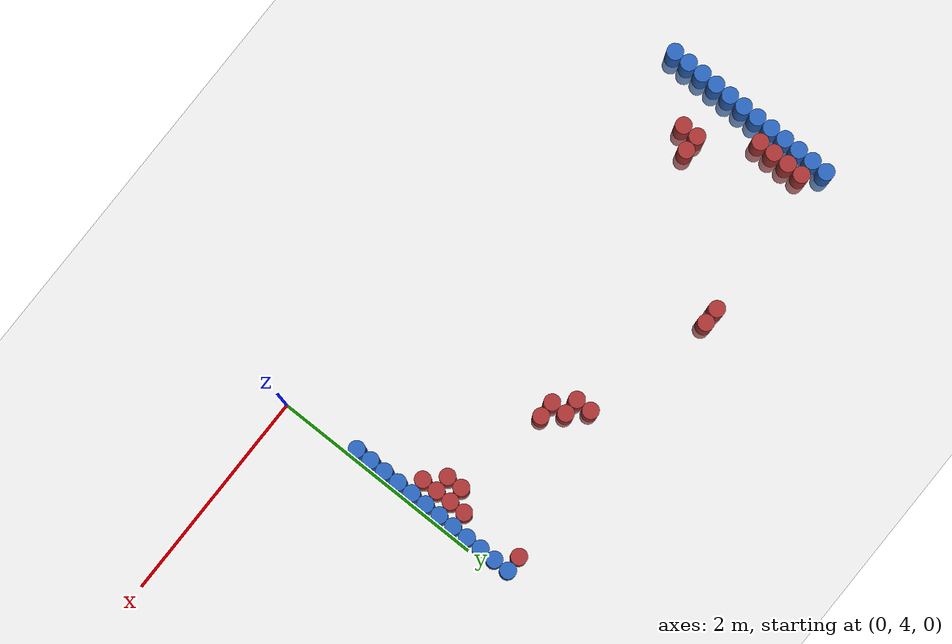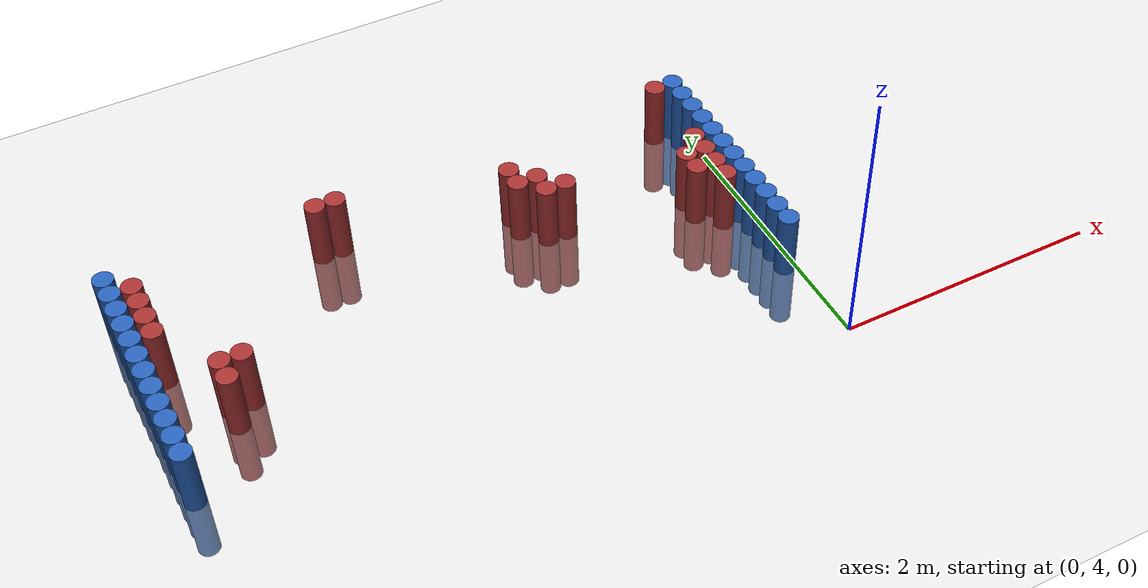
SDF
<sdf version="1.6">
 <world name="default">
  <model name="ground_plane">
   <static>1</static>
   <link name="link">
    <collision name="collision">
     <geometry><plane><normal>0 0 1</normal><size>100 100</size></plane></geometry>
     <surface><friction><ode><mu>100</mu><mu2>50</mu2></ode></friction></surface>
    </collision>
    <visual name="visual">
     <cast_shadows>0</cast_shadows>
     <geometry><plane><normal>0 0 1</normal><size>100 100</size></plane></geometry>
     <material>
      <script><uri>file://media/materials/scripts/gazebo.material</uri><name>Gazebo/Grey</name></script>
     </material>
    </visual>
   </link>
  </model>
  <model name="unit_cylinder_90">
   <static>1</static>
   <pose>-0.075000 4.725000 0.000000 0.000000 0.000000 0.000000</pose>
   <link name="link">
    <inertial>
     <mass>1</mass>
     <inertia><ixx>0.145833</ixx><ixy>0</ixy><ixz>0</ixz><iyy>0.145833</iyy><iyz>0</iyz><izz>0.125</izz></inertia>
    </inertial>
    <collision name="collision">
     <geometry><cylinder><radius>0.075000</radius><length>1</length></cylinder></geometry>
    </collision>
    <visual name="visual">
     <geometry><cylinder><radius>0.075000</radius><length>1</length></cylinder></geometry>
     <material>
      <ambient>0.152000 0.379000 0.720000 1</ambient>
      <diffuse>0.152000 0.379000 0.720000 1</diffuse>
     </material>
     <material>
      <script><name>Gazebo/Grey</name><uri>file://media/materials/scripts/gazebo.material</uri></script>
     </material>
    </visual>
   </link>
  </model>
  <model name="unit_cylinder_91">
   <static>1</static>
   <pose>-4.425000 4.725000 0.000000 0.000000 0.000000 0.000000</pose>
   <link name="link">
    <inertial>
     <mass>1</mass>
     <inertia><ixx>0.145833</ixx><ixy>0</ixy><ixz>0</ixz><iyy>0.145833</iyy><iyz>0</iyz><izz>0.125</izz></inertia>
    </inertial>
    <collision name="collision">
     <geometry><cylinder><radius>0.075000</radius><length>1</length></cylinder></geometry>
    </collision>
    <visual name="visual">
     <geometry><cylinder><radius>0.075000</radius><length>1</length></cylinder></geometry>
     <material>
      <ambient>0.152000 0.379000 0.720000 1</ambient>
      <diffuse>0.152000 0.379000 0.720000 1</diffuse>
     </material>
     <material>
      <script><name>Gazebo/Grey</name><uri>file://media/materials/scripts/gazebo.material</uri></script>
     </material>
    </visual>
   </link>
  </model>
  <model name="unit_cylinder_92">
   <static>1</static>
   <pose>-0.075000 4.875000 0.000000 0.000000 0.000000 0.000000</pose>
   <link name="link">
    <inertial>
     <mass>1</mass>
     <inertia><ixx>0.145833</ixx><ixy>0</ixy><ixz>0</ixz><iyy>0.145833</iyy><iyz>0</iyz><izz>0.125</izz></inertia>
    </inertial>
    <collision name="collision">
     <geometry><cylinder><radius>0.075000</radius><length>1</length></cylinder></geometry>
    </collision>
    <visual name="visual">
     <geometry><cylinder><radius>0.075000</radius><length>1</length></cylinder></geometry>
     <material>
      <ambient>0.152000 0.379000 0.720000 1</ambient>
      <diffuse>0.152000 0.379000 0.720000 1</diffuse>
     </material>
     <material>
      <script><name>Gazebo/Grey</name><uri>file://media/materials/scripts/gazebo.material</uri></script>
     </material>
    </visual>
   </link>
  </model>
  <model name="unit_cylinder_93">
   <static>1</static>
   <pose>-4.425000 4.875000 0.000000 0.000000 0.000000 0.000000</pose>
   <link name="link">
    <inertial>
     <mass>1</mass>
     <inertia><ixx>0.145833</ixx><ixy>0</ixy><ixz>0</ixz><iyy>0.145833</iyy><iyz>0</iyz><izz>0.125</izz></inertia>
    </inertial>
    <collision name="collision">
     <geometry><cylinder><radius>0.075000</radius><length>1</length></cylinder></geometry>
    </collision>
    <visual name="visual">
     <geometry><cylinder><radius>0.075000</radius><length>1</length></cylinder></geometry>
     <material>
      <ambient>0.152000 0.379000 0.720000 1</ambient>
      <diffuse>0.152000 0.379000 0.720000 1</diffuse>
     </material>
     <material>
      <script><name>Gazebo/Grey</name><uri>file://media/materials/scripts/gazebo.material</uri></script>
     </material>
    </visual>
   </link>
  </model>
  <model name="unit_cylinder_94">
   <static>1</static>
   <pose>-0.075000 5.025000 0.000000 0.000000 0.000000 0.000000</pose>
   <link name="link">
    <inertial>
     <mass>1</mass>
     <inertia><ixx>0.145833</ixx><ixy>0</ixy><ixz>0</ixz><iyy>0.145833</iyy><iyz>0</iyz><izz>0.125</izz></inertia>
    </inertial>
    <collision name="collision">
     <geometry><cylinder><radius>0.075000</radius><length>1</length></cylinder></geometry>
    </collision>
    <visual name="visual">
     <geometry><cylinder><radius>0.075000</radius><length>1</length></cylinder></geometry>
     <material>
      <ambient>0.152000 0.379000 0.720000 1</ambient>
      <diffuse>0.152000 0.379000 0.720000 1</diffuse>
     </material>
     <material>
      <script><name>Gazebo/Grey</name><uri>file://media/materials/scripts/gazebo.material</uri></script>
     </material>
    </visual>
   </link>
  </model>
  <model name="unit_cylinder_95">
   <static>1</static>
   <pose>-4.425000 5.025000 0.000000 0.000000 0.000000 0.000000</pose>
   <link name="link">
    <inertial>
     <mass>1</mass>
     <inertia><ixx>0.145833</ixx><ixy>0</ixy><ixz>0</ixz><iyy>0.145833</iyy><iyz>0</iyz><izz>0.125</izz></inertia>
    </inertial>
    <collision name="collision">
     <geometry><cylinder><radius>0.075000</radius><length>1</length></cylinder></geometry>
    </collision>
    <visual name="visual">
     <geometry><cylinder><radius>0.075000</radius><length>1</length></cylinder></geometry>
     <material>
      <ambient>0.152000 0.379000 0.720000 1</ambient>
      <diffuse>0.152000 0.379000 0.720000 1</diffuse>
     </material>
     <material>
      <script><name>Gazebo/Grey</name><uri>file://media/materials/scripts/gazebo.material</uri></script>
     </material>
    </visual>
   </link>
  </model>
  <model name="unit_cylinder_96">
   <static>1</static>
   <pose>-4.425000 5.175000 0.000000 0.000000 0.000000 0.000000</pose>
   <link name="link">
    <inertial>
     <mass>1</mass>
     <inertia><ixx>0.145833</ixx><ixy>0</ixy><ixz>0</ixz><iyy>0.145833</iyy><iyz>0</iyz><izz>0.125</izz></inertia>
    </inertial>
    <collision name="collision">
     <geometry><cylinder><radius>0.075000</radius><length>1</length></cylinder></geometry>
    </collision>
    <visual name="visual">
     <geometry><cylinder><radius>0.075000</radius><length>1</length></cylinder></geometry>
     <material>
      <ambient>0.152000 0.379000 0.720000 1</ambient>
      <diffuse>0.152000 0.379000 0.720000 1</diffuse>
     </material>
     <material>
      <script><name>Gazebo/Grey</name><uri>file://media/materials/scripts/gazebo.material</uri></script>
     </material>
    </visual>
   </link>
  </model>
  <model name="unit_cylinder_97">
   <static>1</static>
   <pose>-4.425000 5.325000 0.000000 0.000000 0.000000 0.000000</pose>
   <link name="link">
    <inertial>
     <mass>1</mass>
     <inertia><ixx>0.145833</ixx><ixy>0</ixy><ixz>0</ixz><iyy>0.145833</iyy><iyz>0</iyz><izz>0.125</izz></inertia>
    </inertial>
    <collision name="collision">
     <geometry><cylinder><radius>0.075000</radius><length>1</length></cylinder></geometry>
    </collision>
    <visual name="visual">
     <geometry><cylinder><radius>0.075000</radius><length>1</length></cylinder></geometry>
     <material>
      <ambient>0.152000 0.379000 0.720000 1</ambient>
      <diffuse>0.152000 0.379000 0.720000 1</diffuse>
     </material>
     <material>
      <script><name>Gazebo/Grey</name><uri>file://media/materials/scripts/gazebo.material</uri></script>
     </material>
    </visual>
   </link>
  </model>
  <model name="unit_cylinder_98">
   <static>1</static>
   <pose>-4.425000 5.475000 0.000000 0.000000 0.000000 0.000000</pose>
   <link name="link">
    <inertial>
     <mass>1</mass>
     <inertia><ixx>0.145833</ixx><ixy>0</ixy><ixz>0</ixz><iyy>0.145833</iyy><iyz>0</iyz><izz>0.125</izz></inertia>
    </inertial>
    <collision name="collision">
     <geometry><cylinder><radius>0.075000</radius><length>1</length></cylinder></geometry>
    </collision>
    <visual name="visual">
     <geometry><cylinder><radius>0.075000</radius><length>1</length></cylinder></geometry>
     <material>
      <ambient>0.152000 0.379000 0.720000 1</ambient>
      <diffuse>0.152000 0.379000 0.720000 1</diffuse>
     </material>
     <material>
      <script><name>Gazebo/Grey</name><uri>file://media/materials/scripts/gazebo.material</uri></script>
     </material>
    </visual>
   </link>
  </model>
  <model name="unit_cylinder_99">
   <static>1</static>
   <pose>-4.425000 5.625000 0.000000 0.000000 0.000000 0.000000</pose>
   <link name="link">
    <inertial>
     <mass>1</mass>
     <inertia><ixx>0.145833</ixx><ixy>0</ixy><ixz>0</ixz><iyy>0.145833</iyy><iyz>0</iyz><izz>0.125</izz></inertia>
    </inertial>
    <collision name="collision">
     <geometry><cylinder><radius>0.075000</radius><length>1</length></cylinder></geometry>
    </collision>
    <visual name="visual">
     <geometry><cylinder><radius>0.075000</radius><length>1</length></cylinder></geometry>
     <material>
      <ambient>0.152000 0.379000 0.720000 1</ambient>
      <diffuse>0.152000 0.379000 0.720000 1</diffuse>
     </material>
     <material>
      <script><name>Gazebo/Grey</name><uri>file://media/materials/scripts/gazebo.material</uri></script>
     </material>
    </visual>
   </link>
  </model>
  <model name="unit_cylinder_100">
   <static>1</static>
   <pose>-4.425000 5.775000 0.000000 0.000000 0.000000 0.000000</pose>
   <link name="link">
    <inertial>
     <mass>1</mass>
     <inertia><ixx>0.145833</ixx><ixy>0</ixy><ixz>0</ixz><iyy>0.145833</iyy><iyz>0</iyz><izz>0.125</izz></inertia>
    </inertial>
    <collision name="collision">
     <geometry><cylinder><radius>0.075000</radius><length>1</length></cylinder></geometry>
    </collision>
    <visual name="visual">
     <geometry><cylinder><radius>0.075000</radius><length>1</length></cylinder></geometry>
     <material>
      <ambient>0.152000 0.379000 0.720000 1</ambient>
      <diffuse>0.152000 0.379000 0.720000 1</diffuse>
     </material>
     <material>
      <script><name>Gazebo/Grey</name><uri>file://media/materials/scripts/gazebo.material</uri></script>
     </material>
    </visual>
   </link>
  </model>
  <model name="unit_cylinder_101">
   <static>1</static>
   <pose>-4.425000 5.925000 0.000000 0.000000 0.000000 0.000000</pose>
   <link name="link">
    <inertial>
     <mass>1</mass>
     <inertia><ixx>0.145833</ixx><ixy>0</ixy><ixz>0</ixz><iyy>0.145833</iyy><iyz>0</iyz><izz>0.125</izz></inertia>
    </inertial>
    <collision name="collision">
     <geometry><cylinder><radius>0.075000</radius><length>1</length></cylinder></geometry>
    </collision>
    <visual name="visual">
     <geometry><cylinder><radius>0.075000</radius><length>1</length></cylinder></geometry>
     <material>
      <ambient>0.152000 0.379000 0.720000 1</ambient>
      <diffuse>0.152000 0.379000 0.720000 1</diffuse>
     </material>
     <material>
      <script><name>Gazebo/Grey</name><uri>file://media/materials/scripts/gazebo.material</uri></script>
     </material>
    </visual>
   </link>
  </model>
  <model name="unit_cylinder_102">
   <static>1</static>
   <pose>-4.425000 6.075000 0.000000 0.000000 0.000000 0.000000</pose>
   <link name="link">
    <inertial>
     <mass>1</mass>
     <inertia><ixx>0.145833</ixx><ixy>0</ixy><ixz>0</ixz><iyy>0.145833</iyy><iyz>0</iyz><izz>0.125</izz></inertia>
    </inertial>
    <collision name="collision">
     <geometry><cylinder><radius>0.075000</radius><length>1</length></cylinder></geometry>
    </collision>
    <visual name="visual">
     <geometry><cylinder><radius>0.075000</radius><length>1</length></cylinder></geometry>
     <material>
      <ambient>0.152000 0.379000 0.720000 1</ambient>
      <diffuse>0.152000 0.379000 0.720000 1</diffuse>
     </material>
     <material>
      <script><name>Gazebo/Grey</name><uri>file://media/materials/scripts/gazebo.material</uri></script>
     </material>
    </visual>
   </link>
  </model>
  <model name="unit_cylinder_103">
   <static>1</static>
   <pose>-4.425000 6.225000 0.000000 0.000000 0.000000 0.000000</pose>
   <link name="link">
    <inertial>
     <mass>1</mass>
     <inertia><ixx>0.145833</ixx><ixy>0</ixy><ixz>0</ixz><iyy>0.145833</iyy><iyz>0</iyz><izz>0.125</izz></inertia>
    </inertial>
    <collision name="collision">
     <geometry><cylinder><radius>0.075000</radius><length>1</length></cylinder></geometry>
    </collision>
    <visual name="visual">
     <geometry><cylinder><radius>0.075000</radius><length>1</length></cylinder></geometry>
     <material>
      <ambient>0.152000 0.379000 0.720000 1</ambient>
      <diffuse>0.152000 0.379000 0.720000 1</diffuse>
     </material>
     <material>
      <script><name>Gazebo/Grey</name><uri>file://media/materials/scripts/gazebo.material</uri></script>
     </material>
    </visual>
   </link>
  </model>
  <model name="unit_cylinder_104">
   <static>1</static>
   <pose>-4.425000 6.375000 0.000000 0.000000 0.000000 0.000000</pose>
   <link name="link">
    <inertial>
     <mass>1</mass>
     <inertia><ixx>0.145833</ixx><ixy>0</ixy><ixz>0</ixz><iyy>0.145833</iyy><iyz>0</iyz><izz>0.125</izz></inertia>
    </inertial>
    <collision name="collision">
     <geometry><cylinder><radius>0.075000</radius><length>1</length></cylinder></geometry>
    </collision>
    <visual name="visual">
     <geometry><cylinder><radius>0.075000</radius><length>1</length></cylinder></geometry>
     <material>
      <ambient>0.152000 0.379000 0.720000 1</ambient>
      <diffuse>0.152000 0.379000 0.720000 1</diffuse>
     </material>
     <material>
      <script><name>Gazebo/Grey</name><uri>file://media/materials/scripts/gazebo.material</uri></script>
     </material>
    </visual>
   </link>
  </model>
  <model name="unit_cylinder_126">
   <static>1</static>
   <pose>-4.275000 5.775000 0.000000 0.000000 0.000000 0.000000</pose>
   <link name="link">
    <inertial>
     <mass>1</mass>
     <inertia><ixx>0.145833</ixx><ixy>0</ixy><ixz>0</ixz><iyy>0.145833</iyy><iyz>0</iyz><izz>0.125</izz></inertia>
    </inertial>
    <collision name="collision">
     <geometry><cylinder><radius>0.075000</radius><length>1</length></cylinder></geometry>
    </collision>
    <visual name="visual">
     <geometry><cylinder><radius>0.075000</radius><length>1</length></cylinder></geometry>
     <material>
      <ambient>0.648000 0.192000 0.192000 1</ambient>
      <diffuse>0.648000 0.192000 0.192000 1</diffuse>
     </material>
     <material>
      <script><name>Gazebo/Grey</name><uri>file://media/materials/scripts/gazebo.material</uri></script>
     </material>
    </visual>
   </link>
  </model>
  <model name="unit_cylinder_127">
   <static>1</static>
   <pose>-4.275000 5.925000 0.000000 0.000000 0.000000 0.000000</pose>
   <link name="link">
    <inertial>
     <mass>1</mass>
     <inertia><ixx>0.145833</ixx><ixy>0</ixy><ixz>0</ixz><iyy>0.145833</iyy><iyz>0</iyz><izz>0.125</izz></inertia>
    </inertial>
    <collision name="collision">
     <geometry><cylinder><radius>0.075000</radius><length>1</length></cylinder></geometry>
    </collision>
    <visual name="visual">
     <geometry><cylinder><radius>0.075000</radius><length>1</length></cylinder></geometry>
     <material>
      <ambient>0.648000 0.192000 0.192000 1</ambient>
      <diffuse>0.648000 0.192000 0.192000 1</diffuse>
     </material>
     <material>
      <script><name>Gazebo/Grey</name><uri>file://media/materials/scripts/gazebo.material</uri></script>
     </material>
    </visual>
   </link>
  </model>
  <model name="unit_cylinder_128">
   <static>1</static>
   <pose>-4.275000 6.075000 0.000000 0.000000 0.000000 0.000000</pose>
   <link name="link">
    <inertial>
     <mass>1</mass>
     <inertia><ixx>0.145833</ixx><ixy>0</ixy><ixz>0</ixz><iyy>0.145833</iyy><iyz>0</iyz><izz>0.125</izz></inertia>
    </inertial>
    <collision name="collision">
     <geometry><cylinder><radius>0.075000</radius><length>1</length></cylinder></geometry>
    </collision>
    <visual name="visual">
     <geometry><cylinder><radius>0.075000</radius><length>1</length></cylinder></geometry>
     <material>
      <ambient>0.648000 0.192000 0.192000 1</ambient>
      <diffuse>0.648000 0.192000 0.192000 1</diffuse>
     </material>
     <material>
      <script><name>Gazebo/Grey</name><uri>file://media/materials/scripts/gazebo.material</uri></script>
     </material>
    </visual>
   </link>
  </model>
  <model name="unit_cylinder_129">
   <static>1</static>
   <pose>-4.275000 6.225000 0.000000 0.000000 0.000000 0.000000</pose>
   <link name="link">
    <inertial>
     <mass>1</mass>
     <inertia><ixx>0.145833</ixx><ixy>0</ixy><ixz>0</ixz><iyy>0.145833</iyy><iyz>0</iyz><izz>0.125</izz></inertia>
    </inertial>
    <collision name="collision">
     <geometry><cylinder><radius>0.075000</radius><length>1</length></cylinder></geometry>
    </collision>
    <visual name="visual">
     <geometry><cylinder><radius>0.075000</radius><length>1</length></cylinder></geometry>
     <material>
      <ambient>0.648000 0.192000 0.192000 1</ambient>
      <diffuse>0.648000 0.192000 0.192000 1</diffuse>
     </material>
     <material>
      <script><name>Gazebo/Grey</name><uri>file://media/materials/scripts/gazebo.material</uri></script>
     </material>
    </visual>
   </link>
  </model>
  <model name="unit_cylinder_136">
   <static>1</static>
   <pose>-3.975000 5.175000 0.000000 0.000000 0.000000 0.000000</pose>
   <link name="link">
    <inertial>
     <mass>1</mass>
     <inertia><ixx>0.145833</ixx><ixy>0</ixy><ixz>0</ixz><iyy>0.145833</iyy><iyz>0</iyz><izz>0.125</izz></inertia>
    </inertial>
    <collision name="collision">
     <geometry><cylinder><radius>0.075000</radius><length>1</length></cylinder></geometry>
    </collision>
    <visual name="visual">
     <geometry><cylinder><radius>0.075000</radius><length>1</length></cylinder></geometry>
     <material>
      <ambient>0.648000 0.192000 0.192000 1</ambient>
      <diffuse>0.648000 0.192000 0.192000 1</diffuse>
     </material>
     <material>
      <script><name>Gazebo/Grey</name><uri>file://media/materials/scripts/gazebo.material</uri></script>
     </material>
    </visual>
   </link>
  </model>
  <model name="unit_cylinder_137">
   <static>1</static>
   <pose>-3.975000 5.325000 0.000000 0.000000 0.000000 0.000000</pose>
   <link name="link">
    <inertial>
     <mass>1</mass>
     <inertia><ixx>0.145833</ixx><ixy>0</ixy><ixz>0</ixz><iyy>0.145833</iyy><iyz>0</iyz><izz>0.125</izz></inertia>
    </inertial>
    <collision name="collision">
     <geometry><cylinder><radius>0.075000</radius><length>1</length></cylinder></geometry>
    </collision>
    <visual name="visual">
     <geometry><cylinder><radius>0.075000</radius><length>1</length></cylinder></geometry>
     <material>
      <ambient>0.648000 0.192000 0.192000 1</ambient>
      <diffuse>0.648000 0.192000 0.192000 1</diffuse>
     </material>
     <material>
      <script><name>Gazebo/Grey</name><uri>file://media/materials/scripts/gazebo.material</uri></script>
     </material>
    </visual>
   </link>
  </model>
  <model name="unit_cylinder_138">
   <static>1</static>
   <pose>-3.825000 5.325000 0.000000 0.000000 0.000000 0.000000</pose>
   <link name="link">
    <inertial>
     <mass>1</mass>
     <inertia><ixx>0.145833</ixx><ixy>0</ixy><ixz>0</ixz><iyy>0.145833</iyy><iyz>0</iyz><izz>0.125</izz></inertia>
    </inertial>
    <collision name="collision">
     <geometry><cylinder><radius>0.075000</radius><length>1</length></cylinder></geometry>
    </collision>
    <visual name="visual">
     <geometry><cylinder><radius>0.075000</radius><length>1</length></cylinder></geometry>
     <material>
      <ambient>0.648000 0.192000 0.192000 1</ambient>
      <diffuse>0.648000 0.192000 0.192000 1</diffuse>
     </material>
     <material>
      <script><name>Gazebo/Grey</name><uri>file://media/materials/scripts/gazebo.material</uri></script>
     </material>
    </visual>
   </link>
  </model>
  <model name="unit_cylinder_152">
   <static>1</static>
   <pose>-2.925000 6.375000 0.000000 0.000000 0.000000 0.000000</pose>
   <link name="link">
    <inertial>
     <mass>1</mass>
     <inertia><ixx>0.145833</ixx><ixy>0</ixy><ixz>0</ixz><iyy>0.145833</iyy><iyz>0</iyz><izz>0.125</izz></inertia>
    </inertial>
    <collision name="collision">
     <geometry><cylinder><radius>0.075000</radius><length>1</length></cylinder></geometry>
    </collision>
    <visual name="visual">
     <geometry><cylinder><radius>0.075000</radius><length>1</length></cylinder></geometry>
     <material>
      <ambient>0.648000 0.192000 0.192000 1</ambient>
      <diffuse>0.648000 0.192000 0.192000 1</diffuse>
     </material>
     <material>
      <script><name>Gazebo/Grey</name><uri>file://media/materials/scripts/gazebo.material</uri></script>
     </material>
    </visual>
   </link>
  </model>
  <model name="unit_cylinder_154">
   <static>1</static>
   <pose>-2.775000 6.375000 0.000000 0.000000 0.000000 0.000000</pose>
   <link name="link">
    <inertial>
     <mass>1</mass>
     <inertia><ixx>0.145833</ixx><ixy>0</ixy><ixz>0</ixz><iyy>0.145833</iyy><iyz>0</iyz><izz>0.125</izz></inertia>
    </inertial>
    <collision name="collision">
     <geometry><cylinder><radius>0.075000</radius><length>1</length></cylinder></geometry>
    </collision>
    <visual name="visual">
     <geometry><cylinder><radius>0.075000</radius><length>1</length></cylinder></geometry>
     <material>
      <ambient>0.648000 0.192000 0.192000 1</ambient>
      <diffuse>0.648000 0.192000 0.192000 1</diffuse>
     </material>
     <material>
      <script><name>Gazebo/Grey</name><uri>file://media/materials/scripts/gazebo.material</uri></script>
     </material>
    </visual>
   </link>
  </model>
  <model name="unit_cylinder_164">
   <static>1</static>
   <pose>-1.575000 5.925000 0.000000 0.000000 0.000000 0.000000</pose>
   <link name="link">
    <inertial>
     <mass>1</mass>
     <inertia><ixx>0.145833</ixx><ixy>0</ixy><ixz>0</ixz><iyy>0.145833</iyy><iyz>0</iyz><izz>0.125</izz></inertia>
    </inertial>
    <collision name="collision">
     <geometry><cylinder><radius>0.075000</radius><length>1</length></cylinder></geometry>
    </collision>
    <visual name="visual">
     <geometry><cylinder><radius>0.075000</radius><length>1</length></cylinder></geometry>
     <material>
      <ambient>0.648000 0.192000 0.192000 1</ambient>
      <diffuse>0.648000 0.192000 0.192000 1</diffuse>
     </material>
     <material>
      <script><name>Gazebo/Grey</name><uri>file://media/materials/scripts/gazebo.material</uri></script>
     </material>
    </visual>
   </link>
  </model>
  <model name="unit_cylinder_165">
   <static>1</static>
   <pose>-1.575000 6.075000 0.000000 0.000000 0.000000 0.000000</pose>
   <link name="link">
    <inertial>
     <mass>1</mass>
     <inertia><ixx>0.145833</ixx><ixy>0</ixy><ixz>0</ixz><iyy>0.145833</iyy><iyz>0</iyz><izz>0.125</izz></inertia>
    </inertial>
    <collision name="collision">
     <geometry><cylinder><radius>0.075000</radius><length>1</length></cylinder></geometry>
    </collision>
    <visual name="visual">
     <geometry><cylinder><radius>0.075000</radius><length>1</length></cylinder></geometry>
     <material>
      <ambient>0.648000 0.192000 0.192000 1</ambient>
      <diffuse>0.648000 0.192000 0.192000 1</diffuse>
     </material>
     <material>
      <script><name>Gazebo/Grey</name><uri>file://media/materials/scripts/gazebo.material</uri></script>
     </material>
    </visual>
   </link>
  </model>
  <model name="unit_cylinder_166">
   <static>1</static>
   <pose>-1.425000 5.775000 0.000000 0.000000 0.000000 0.000000</pose>
   <link name="link">
    <inertial>
     <mass>1</mass>
     <inertia><ixx>0.145833</ixx><ixy>0</ixy><ixz>0</ixz><iyy>0.145833</iyy><iyz>0</iyz><izz>0.125</izz></inertia>
    </inertial>
    <collision name="collision">
     <geometry><cylinder><radius>0.075000</radius><length>1</length></cylinder></geometry>
    </collision>
    <visual name="visual">
     <geometry><cylinder><radius>0.075000</radius><length>1</length></cylinder></geometry>
     <material>
      <ambient>0.648000 0.192000 0.192000 1</ambient>
      <diffuse>0.648000 0.192000 0.192000 1</diffuse>
     </material>
     <material>
      <script><name>Gazebo/Grey</name><uri>file://media/materials/scripts/gazebo.material</uri></script>
     </material>
    </visual>
   </link>
  </model>
  <model name="unit_cylinder_167">
   <static>1</static>
   <pose>-1.425000 5.925000 0.000000 0.000000 0.000000 0.000000</pose>
   <link name="link">
    <inertial>
     <mass>1</mass>
     <inertia><ixx>0.145833</ixx><ixy>0</ixy><ixz>0</ixz><iyy>0.145833</iyy><iyz>0</iyz><izz>0.125</izz></inertia>
    </inertial>
    <collision name="collision">
     <geometry><cylinder><radius>0.075000</radius><length>1</length></cylinder></geometry>
    </collision>
    <visual name="visual">
     <geometry><cylinder><radius>0.075000</radius><length>1</length></cylinder></geometry>
     <material>
      <ambient>0.648000 0.192000 0.192000 1</ambient>
      <diffuse>0.648000 0.192000 0.192000 1</diffuse>
     </material>
     <material>
      <script><name>Gazebo/Grey</name><uri>file://media/materials/scripts/gazebo.material</uri></script>
     </material>
    </visual>
   </link>
  </model>
  <model name="unit_cylinder_168">
   <static>1</static>
   <pose>-1.275000 5.775000 0.000000 0.000000 0.000000 0.000000</pose>
   <link name="link">
    <inertial>
     <mass>1</mass>
     <inertia><ixx>0.145833</ixx><ixy>0</ixy><ixz>0</ixz><iyy>0.145833</iyy><iyz>0</iyz><izz>0.125</izz></inertia>
    </inertial>
    <collision name="collision">
     <geometry><cylinder><radius>0.075000</radius><length>1</length></cylinder></geometry>
    </collision>
    <visual name="visual">
     <geometry><cylinder><radius>0.075000</radius><length>1</length></cylinder></geometry>
     <material>
      <ambient>0.648000 0.192000 0.192000 1</ambient>
      <diffuse>0.648000 0.192000 0.192000 1</diffuse>
     </material>
     <material>
      <script><name>Gazebo/Grey</name><uri>file://media/materials/scripts/gazebo.material</uri></script>
     </material>
    </visual>
   </link>
  </model>
  <model name="unit_cylinder_173">
   <static>1</static>
   <pose>-0.375000 5.475000 0.000000 0.000000 0.000000 0.000000</pose>
   <link name="link">
    <inertial>
     <mass>1</mass>
     <inertia><ixx>0.145833</ixx><ixy>0</ixy><ixz>0</ixz><iyy>0.145833</iyy><iyz>0</iyz><izz>0.125</izz></inertia>
    </inertial>
    <collision name="collision">
     <geometry><cylinder><radius>0.075000</radius><length>1</length></cylinder></geometry>
    </collision>
    <visual name="visual">
     <geometry><cylinder><radius>0.075000</radius><length>1</length></cylinder></geometry>
     <material>
      <ambient>0.648000 0.192000 0.192000 1</ambient>
      <diffuse>0.648000 0.192000 0.192000 1</diffuse>
     </material>
     <material>
      <script><name>Gazebo/Grey</name><uri>file://media/materials/scripts/gazebo.material</uri></script>
     </material>
    </visual>
   </link>
  </model>
  <model name="unit_cylinder_174">
   <static>1</static>
   <pose>-0.375000 5.625000 0.000000 0.000000 0.000000 0.000000</pose>
   <link name="link">
    <inertial>
     <mass>1</mass>
     <inertia><ixx>0.145833</ixx><ixy>0</ixy><ixz>0</ixz><iyy>0.145833</iyy><iyz>0</iyz><izz>0.125</izz></inertia>
    </inertial>
    <collision name="collision">
     <geometry><cylinder><radius>0.075000</radius><length>1</length></cylinder></geometry>
    </collision>
    <visual name="visual">
     <geometry><cylinder><radius>0.075000</radius><length>1</length></cylinder></geometry>
     <material>
      <ambient>0.648000 0.192000 0.192000 1</ambient>
      <diffuse>0.648000 0.192000 0.192000 1</diffuse>
     </material>
     <material>
      <script><name>Gazebo/Grey</name><uri>file://media/materials/scripts/gazebo.material</uri></script>
     </material>
    </visual>
   </link>
  </model>
  <model name="unit_cylinder_178">
   <static>1</static>
   <pose>-0.225000 5.325000 0.000000 0.000000 0.000000 0.000000</pose>
   <link name="link">
    <inertial>
     <mass>1</mass>
     <inertia><ixx>0.145833</ixx><ixy>0</ixy><ixz>0</ixz><iyy>0.145833</iyy><iyz>0</iyz><izz>0.125</izz></inertia>
    </inertial>
    <collision name="collision">
     <geometry><cylinder><radius>0.075000</radius><length>1</length></cylinder></geometry>
    </collision>
    <visual name="visual">
     <geometry><cylinder><radius>0.075000</radius><length>1</length></cylinder></geometry>
     <material>
      <ambient>0.648000 0.192000 0.192000 1</ambient>
      <diffuse>0.648000 0.192000 0.192000 1</diffuse>
     </material>
     <material>
      <script><name>Gazebo/Grey</name><uri>file://media/materials/scripts/gazebo.material</uri></script>
     </material>
    </visual>
   </link>
  </model>
  <model name="unit_cylinder_179">
   <static>1</static>
   <pose>-0.225000 5.475000 0.000000 0.000000 0.000000 0.000000</pose>
   <link name="link">
    <inertial>
     <mass>1</mass>
     <inertia><ixx>0.145833</ixx><ixy>0</ixy><ixz>0</ixz><iyy>0.145833</iyy><iyz>0</iyz><izz>0.125</izz></inertia>
    </inertial>
    <collision name="collision">
     <geometry><cylinder><radius>0.075000</radius><length>1</length></cylinder></geometry>
    </collision>
    <visual name="visual">
     <geometry><cylinder><radius>0.075000</radius><length>1</length></cylinder></geometry>
     <material>
      <ambient>0.648000 0.192000 0.192000 1</ambient>
      <diffuse>0.648000 0.192000 0.192000 1</diffuse>
     </material>
     <material>
      <script><name>Gazebo/Grey</name><uri>file://media/materials/scripts/gazebo.material</uri></script>
     </material>
    </visual>
   </link>
  </model>
  <model name="unit_cylinder_180">
   <static>1</static>
   <pose>-0.225000 5.625000 0.000000 0.000000 0.000000 0.000000</pose>
   <link name="link">
    <inertial>
     <mass>1</mass>
     <inertia><ixx>0.145833</ixx><ixy>0</ixy><ixz>0</ixz><iyy>0.145833</iyy><iyz>0</iyz><izz>0.125</izz></inertia>
    </inertial>
    <collision name="collision">
     <geometry><cylinder><radius>0.075000</radius><length>1</length></cylinder></geometry>
    </collision>
    <visual name="visual">
     <geometry><cylinder><radius>0.075000</radius><length>1</length></cylinder></geometry>
     <material>
      <ambient>0.648000 0.192000 0.192000 1</ambient>
      <diffuse>0.648000 0.192000 0.192000 1</diffuse>
     </material>
     <material>
      <script><name>Gazebo/Grey</name><uri>file://media/materials/scripts/gazebo.material</uri></script>
     </material>
    </visual>
   </link>
  </model>
  <model name="unit_cylinder_181">
   <static>1</static>
   <pose>-0.225000 5.775000 0.000000 0.000000 0.000000 0.000000</pose>
   <link name="link">
    <inertial>
     <mass>1</mass>
     <inertia><ixx>0.145833</ixx><ixy>0</ixy><ixz>0</ixz><iyy>0.145833</iyy><iyz>0</iyz><izz>0.125</izz></inertia>
    </inertial>
    <collision name="collision">
     <geometry><cylinder><radius>0.075000</radius><length>1</length></cylinder></geometry>
    </collision>
    <visual name="visual">
     <geometry><cylinder><radius>0.075000</radius><length>1</length></cylinder></geometry>
     <material>
      <ambient>0.648000 0.192000 0.192000 1</ambient>
      <diffuse>0.648000 0.192000 0.192000 1</diffuse>
     </material>
     <material>
      <script><name>Gazebo/Grey</name><uri>file://media/materials/scripts/gazebo.material</uri></script>
     </material>
    </visual>
   </link>
  </model>
  <model name="unit_cylinder_182">
   <static>1</static>
   <pose>-0.225000 6.375000 0.000000 0.000000 0.000000 0.000000</pose>
   <link name="link">
    <inertial>
     <mass>1</mass>
     <inertia><ixx>0.145833</ixx><ixy>0</ixy><ixz>0</ixz><iyy>0.145833</iyy><iyz>0</iyz><izz>0.125</izz></inertia>
    </inertial>
    <collision name="collision">
     <geometry><cylinder><radius>0.075000</radius><length>1</length></cylinder></geometry>
    </collision>
    <visual name="visual">
     <geometry><cylinder><radius>0.075000</radius><length>1</length></cylinder></geometry>
     <material>
      <ambient>0.648000 0.192000 0.192000 1</ambient>
      <diffuse>0.648000 0.192000 0.192000 1</diffuse>
     </material>
     <material>
      <script><name>Gazebo/Grey</name><uri>file://media/materials/scripts/gazebo.material</uri></script>
     </material>
    </visual>
   </link>
  </model>
  <model name="unit_cylinder_195">
   <static>1</static>
   <pose>-0.075000 5.175000 0.000000 0.000000 0.000000 0.000000</pose>
   <link name="link">
    <inertial>
     <mass>1</mass>
     <inertia><ixx>0.145833</ixx><ixy>0</ixy><ixz>0</ixz><iyy>0.145833</iyy><iyz>0</iyz><izz>0.125</izz></inertia>
    </inertial>
    <collision name="collision">
     <geometry><cylinder><radius>0.075000</radius><length>1</length></cylinder></geometry>
    </collision>
    <visual name="visual">
     <geometry><cylinder><radius>0.075000</radius><length>1</length></cylinder></geometry>
     <material>
      <ambient>0.152000 0.379000 0.720000 1</ambient>
      <diffuse>0.152000 0.379000 0.720000 1</diffuse>
     </material>
     <material>
      <script><name>Gazebo/Grey</name><uri>file://media/materials/scripts/gazebo.material</uri></script>
     </material>
    </visual>
   </link>
  </model>
  <model name="unit_cylinder_196">
   <static>1</static>
   <pose>-0.075000 5.325000 0.000000 0.000000 0.000000 0.000000</pose>
   <link name="link">
    <inertial>
     <mass>1</mass>
     <inertia><ixx>0.145833</ixx><ixy>0</ixy><ixz>0</ixz><iyy>0.145833</iyy><iyz>0</iyz><izz>0.125</izz></inertia>
    </inertial>
    <collision name="collision">
     <geometry><cylinder><radius>0.075000</radius><length>1</length></cylinder></geometry>
    </collision>
    <visual name="visual">
     <geometry><cylinder><radius>0.075000</radius><length>1</length></cylinder></geometry>
     <material>
      <ambient>0.152000 0.379000 0.720000 1</ambient>
      <diffuse>0.152000 0.379000 0.720000 1</diffuse>
     </material>
     <material>
      <script><name>Gazebo/Grey</name><uri>file://media/materials/scripts/gazebo.material</uri></script>
     </material>
    </visual>
   </link>
  </model>
  <model name="unit_cylinder_197">
   <static>1</static>
   <pose>-0.075000 5.475000 0.000000 0.000000 0.000000 0.000000</pose>
   <link name="link">
    <inertial>
     <mass>1</mass>
     <inertia><ixx>0.145833</ixx><ixy>0</ixy><ixz>0</ixz><iyy>0.145833</iyy><iyz>0</iyz><izz>0.125</izz></inertia>
    </inertial>
    <collision name="collision">
     <geometry><cylinder><radius>0.075000</radius><length>1</length></cylinder></geometry>
    </collision>
    <visual name="visual">
     <geometry><cylinder><radius>0.075000</radius><length>1</length></cylinder></geometry>
     <material>
      <ambient>0.152000 0.379000 0.720000 1</ambient>
      <diffuse>0.152000 0.379000 0.720000 1</diffuse>
     </material>
     <material>
      <script><name>Gazebo/Grey</name><uri>file://media/materials/scripts/gazebo.material</uri></script>
     </material>
    </visual>
   </link>
  </model>
  <model name="unit_cylinder_198">
   <static>1</static>
   <pose>-0.075000 5.625000 0.000000 0.000000 0.000000 0.000000</pose>
   <link name="link">
    <inertial>
     <mass>1</mass>
     <inertia><ixx>0.145833</ixx><ixy>0</ixy><ixz>0</ixz><iyy>0.145833</iyy><iyz>0</iyz><izz>0.125</izz></inertia>
    </inertial>
    <collision name="collision">
     <geometry><cylinder><radius>0.075000</radius><length>1</length></cylinder></geometry>
    </collision>
    <visual name="visual">
     <geometry><cylinder><radius>0.075000</radius><length>1</length></cylinder></geometry>
     <material>
      <ambient>0.152000 0.379000 0.720000 1</ambient>
      <diffuse>0.152000 0.379000 0.720000 1</diffuse>
     </material>
     <material>
      <script><name>Gazebo/Grey</name><uri>file://media/materials/scripts/gazebo.material</uri></script>
     </material>
    </visual>
   </link>
  </model>
  <model name="unit_cylinder_199">
   <static>1</static>
   <pose>-0.075000 5.775000 0.000000 0.000000 0.000000 0.000000</pose>
   <link name="link">
    <inertial>
     <mass>1</mass>
     <inertia><ixx>0.145833</ixx><ixy>0</ixy><ixz>0</ixz><iyy>0.145833</iyy><iyz>0</iyz><izz>0.125</izz></inertia>
    </inertial>
    <collision name="collision">
     <geometry><cylinder><radius>0.075000</radius><length>1</length></cylinder></geometry>
    </collision>
    <visual name="visual">
     <geometry><cylinder><radius>0.075000</radius><length>1</length></cylinder></geometry>
     <material>
      <ambient>0.152000 0.379000 0.720000 1</ambient>
      <diffuse>0.152000 0.379000 0.720000 1</diffuse>
     </material>
     <material>
      <script><name>Gazebo/Grey</name><uri>file://media/materials/scripts/gazebo.material</uri></script>
     </material>
    </visual>
   </link>
  </model>
  <model name="unit_cylinder_200">
   <static>1</static>
   <pose>-0.075000 5.925000 0.000000 0.000000 0.000000 0.000000</pose>
   <link name="link">
    <inertial>
     <mass>1</mass>
     <inertia><ixx>0.145833</ixx><ixy>0</ixy><ixz>0</ixz><iyy>0.145833</iyy><iyz>0</iyz><izz>0.125</izz></inertia>
    </inertial>
    <collision name="collision">
     <geometry><cylinder><radius>0.075000</radius><length>1</length></cylinder></geometry>
    </collision>
    <visual name="visual">
     <geometry><cylinder><radius>0.075000</radius><length>1</length></cylinder></geometry>
     <material>
      <ambient>0.152000 0.379000 0.720000 1</ambient>
      <diffuse>0.152000 0.379000 0.720000 1</diffuse>
     </material>
     <material>
      <script><name>Gazebo/Grey</name><uri>file://media/materials/scripts/gazebo.material</uri></script>
     </material>
    </visual>
   </link>
  </model>
  <model name="unit_cylinder_201">
   <static>1</static>
   <pose>-0.075000 6.075000 0.000000 0.000000 0.000000 0.000000</pose>
   <link name="link">
    <inertial>
     <mass>1</mass>
     <inertia><ixx>0.145833</ixx><ixy>0</ixy><ixz>0</ixz><iyy>0.145833</iyy><iyz>0</iyz><izz>0.125</izz></inertia>
    </inertial>
    <collision name="collision">
     <geometry><cylinder><radius>0.075000</radius><length>1</length></cylinder></geometry>
    </collision>
    <visual name="visual">
     <geometry><cylinder><radius>0.075000</radius><length>1</length></cylinder></geometry>
     <material>
      <ambient>0.152000 0.379000 0.720000 1</ambient>
      <diffuse>0.152000 0.379000 0.720000 1</diffuse>
     </material>
     <material>
      <script><name>Gazebo/Grey</name><uri>file://media/materials/scripts/gazebo.material</uri></script>
     </material>
    </visual>
   </link>
  </model>
  <model name="unit_cylinder_202">
   <static>1</static>
   <pose>-0.075000 6.225000 0.000000 0.000000 0.000000 0.000000</pose>
   <link name="link">
    <inertial>
     <mass>1</mass>
     <inertia><ixx>0.145833</ixx><ixy>0</ixy><ixz>0</ixz><iyy>0.145833</iyy><iyz>0</iyz><izz>0.125</izz></inertia>
    </inertial>
    <collision name="collision">
     <geometry><cylinder><radius>0.075000</radius><length>1</length></cylinder></geometry>
    </collision>
    <visual name="visual">
     <geometry><cylinder><radius>0.075000</radius><length>1</length></cylinder></geometry>
     <material>
      <ambient>0.152000 0.379000 0.720000 1</ambient>
      <diffuse>0.152000 0.379000 0.720000 1</diffuse>
     </material>
     <material>
      <script><name>Gazebo/Grey</name><uri>file://media/materials/scripts/gazebo.material</uri></script>
     </material>
    </visual>
   </link>
  </model>
  <model name="unit_cylinder_203">
   <static>1</static>
   <pose>-0.075000 6.375000 0.000000 0.000000 0.000000 0.000000</pose>
   <link name="link">
    <inertial>
     <mass>1</mass>
     <inertia><ixx>0.145833</ixx><ixy>0</ixy><ixz>0</ixz><iyy>0.145833</iyy><iyz>0</iyz><izz>0.125</izz></inertia>
    </inertial>
    <collision name="collision">
     <geometry><cylinder><radius>0.075000</radius><length>1</length></cylinder></geometry>
    </collision>
    <visual name="visual">
     <geometry><cylinder><radius>0.075000</radius><length>1</length></cylinder></geometry>
     <material>
      <ambient>0.152000 0.379000 0.720000 1</ambient>
      <diffuse>0.152000 0.379000 0.720000 1</diffuse>
     </material>
     <material>
      <script><name>Gazebo/Grey</name><uri>file://media/materials/scripts/gazebo.material</uri></script>
     </material>
    </visual>
   </link>
  </model>
 </world>
</sdf>
